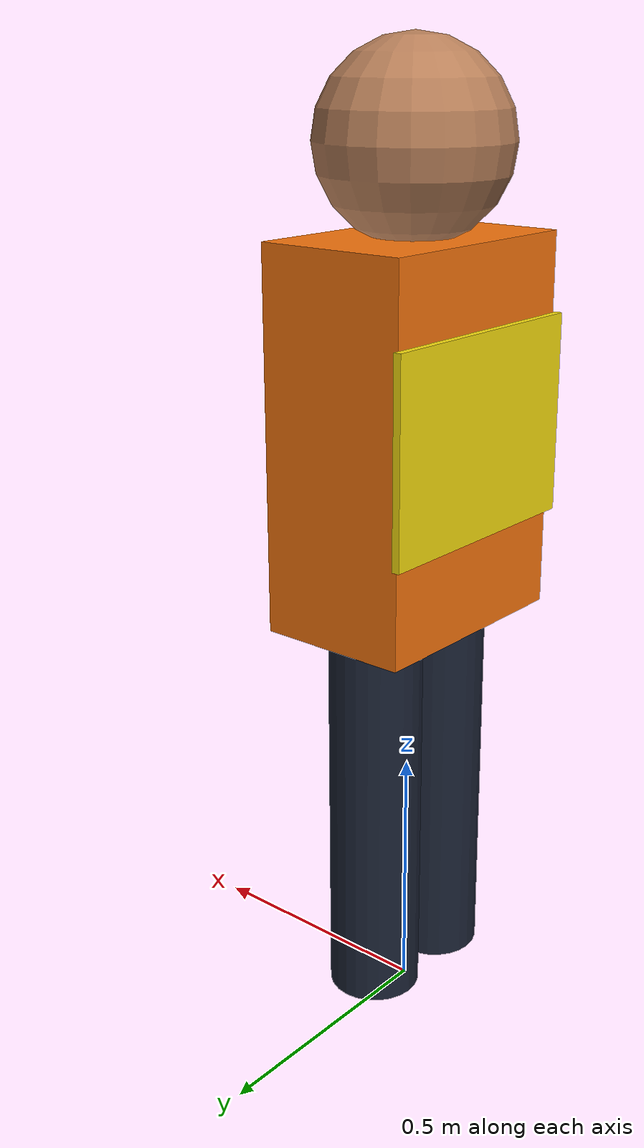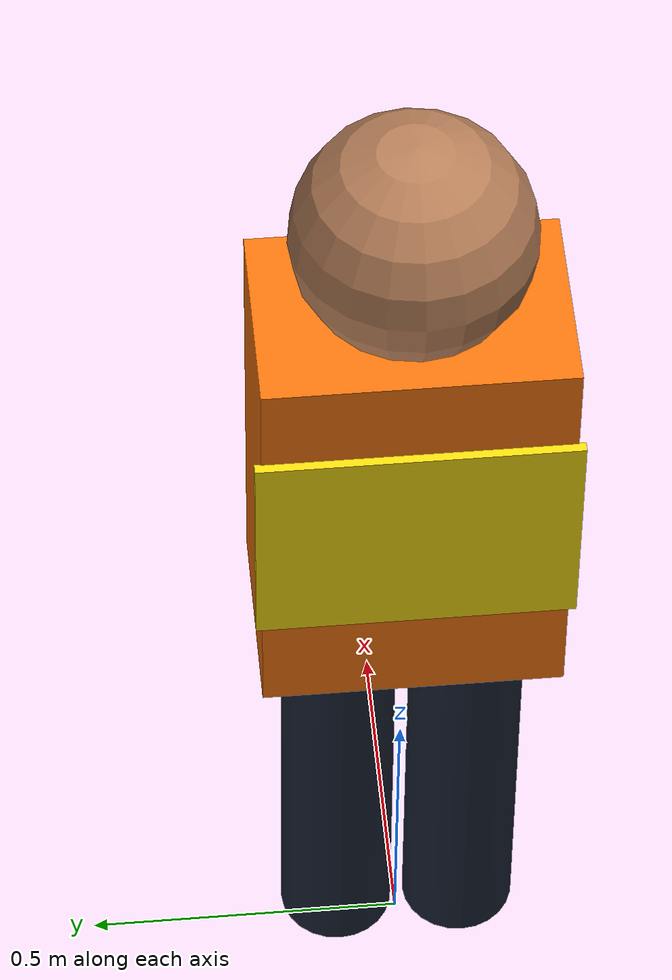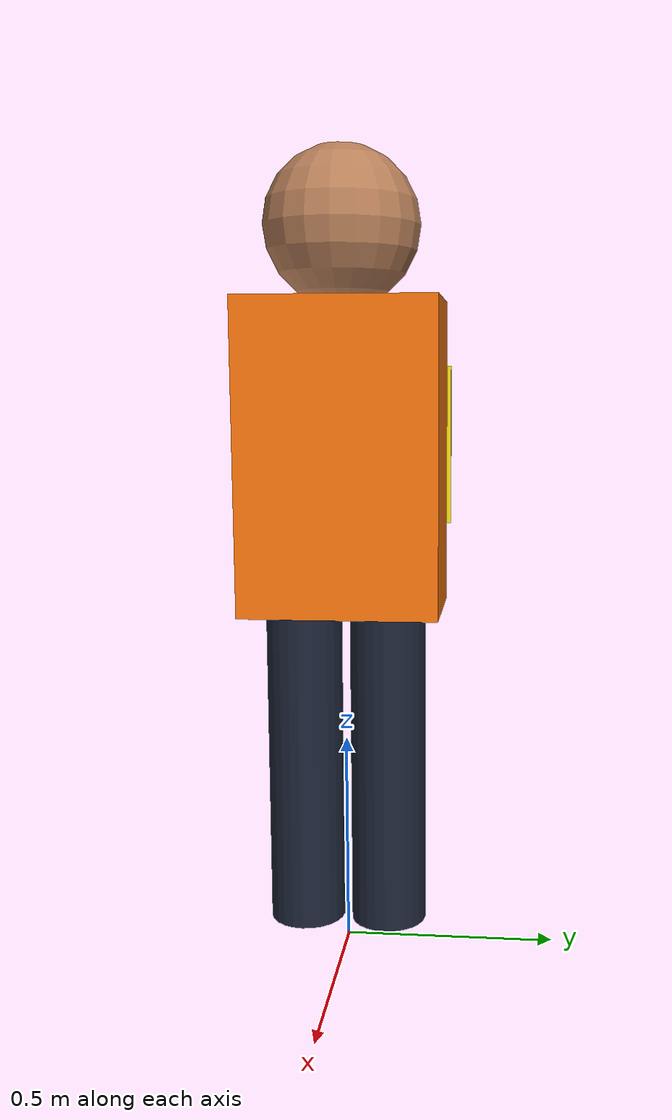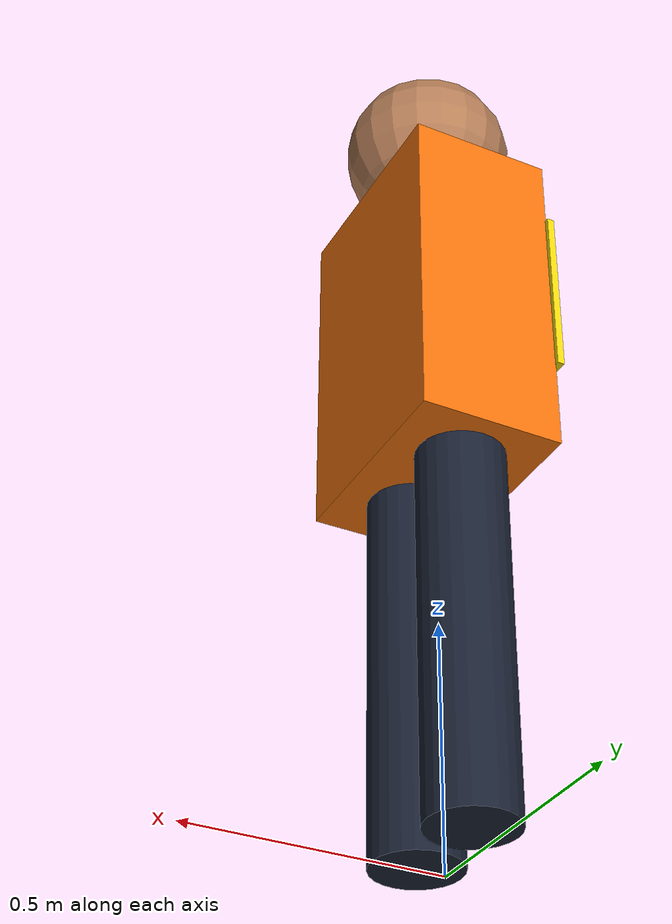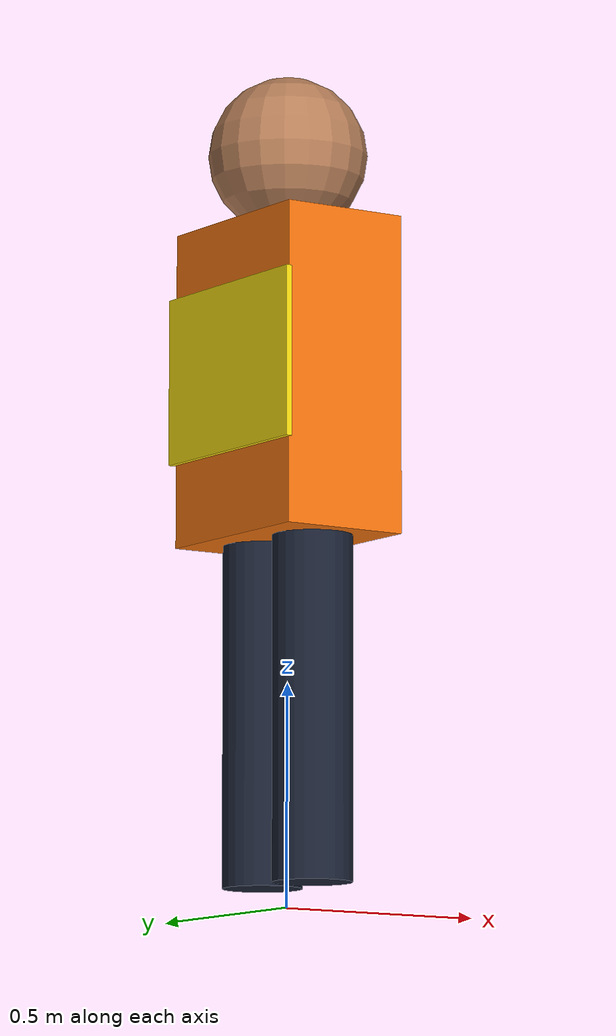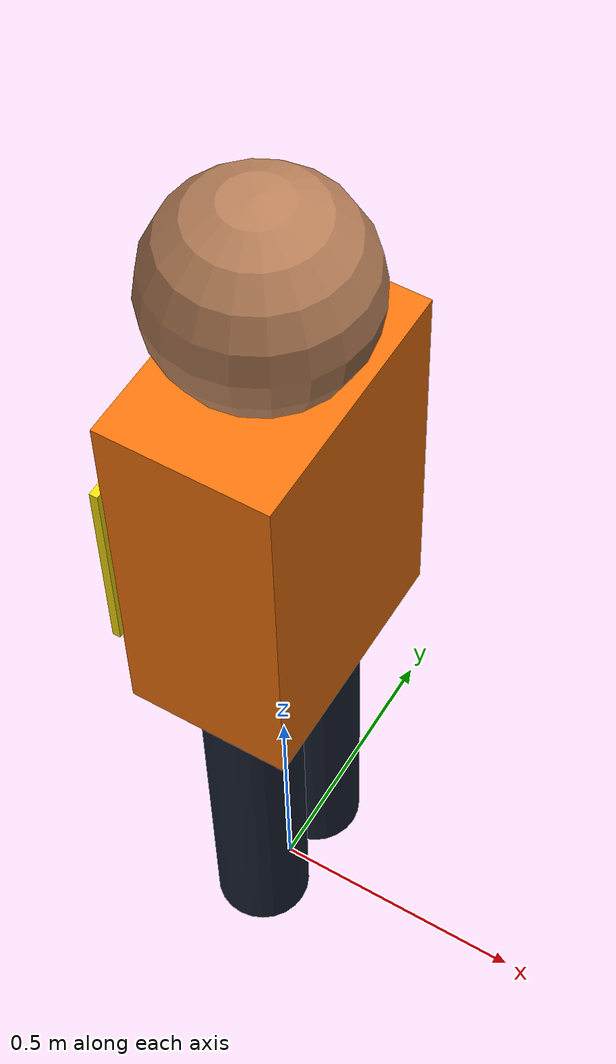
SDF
<?xml version="1.0" ?>
<sdf version="1.9">
  <model name="warehouse_worker">
    <static>true</static>
    <link name="body">
      <inertial>
        <pose>0 0 0.85 0 0 0</pose>
        <mass>70.0</mass>
        <inertia>
          <ixx>18.23</ixx>
          <ixy>0.0</ixy>
          <ixz>0.0</ixz>
          <iyy>18.23</iyy>
          <iyz>0.0</iyz>
          <izz>2.744</izz>
        </inertia>
      </inertial>

      <!-- One continuous body gives both physics and LiDAR a robust target. -->
      <collision name="worker_collision">
        <pose>0 0 0.85 0 0 0</pose>
        <geometry>
          <cylinder>
            <radius>0.28</radius>
            <length>1.70</length>
          </cylinder>
        </geometry>
        <surface>
          <friction>
            <ode>
              <mu>0.2</mu>
              <mu2>0.2</mu2>
            </ode>
          </friction>
        </surface>
      </collision>

      <!-- Local primitive visuals avoid a network-only Fuel dependency. -->
      <visual name="left_leg">
        <pose>0 0.10 0.45 0 0 0</pose>
        <geometry><cylinder><radius>0.09</radius><length>0.80</length></cylinder></geometry>
        <material><diffuse>0.10 0.13 0.20 1</diffuse></material>
      </visual>
      <visual name="right_leg">
        <pose>0 -0.10 0.45 0 0 0</pose>
        <geometry><cylinder><radius>0.09</radius><length>0.80</length></cylinder></geometry>
        <material><diffuse>0.10 0.13 0.20 1</diffuse></material>
      </visual>
      <visual name="torso">
        <pose>0 0 1.18 0 0 0</pose>
        <geometry><box><size>0.30 0.46 0.72</size></box></geometry>
        <material><diffuse>0.95 0.45 0.05 1</diffuse></material>
      </visual>
      <visual name="head">
        <pose>0 0 1.70 0 0 0</pose>
        <geometry><sphere><radius>0.18</radius></sphere></geometry>
        <material><diffuse>0.72 0.50 0.35 1</diffuse></material>
      </visual>
      <visual name="safety_vest">
        <pose>-0.156 0 1.20 0 0 0</pose>
        <geometry><box><size>0.015 0.48 0.38</size></box></geometry>
        <material>
          <diffuse>0.95 0.85 0.05 1</diffuse>
          <emissive>0.10 0.08 0.0 1</emissive>
        </material>
      </visual>
    </link>

  </model>
</sdf>
